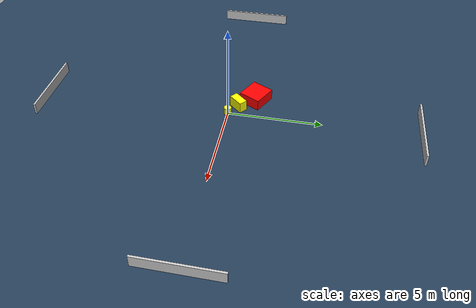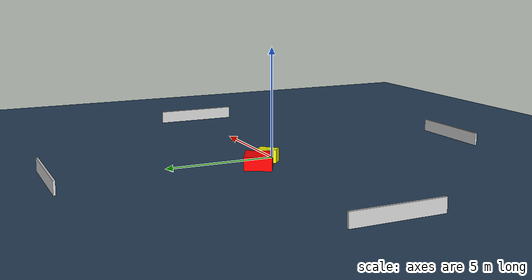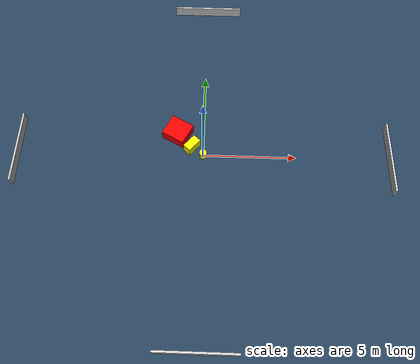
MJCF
<?xml version="1.0" ?>
<mujoco model="generated_environment">
  <option timestep="0.01" integrator="RK4" cone="elliptic"/>
  <default>
    <geom density="1"/>
  </default>
  <asset>
    <texture builtin="gradient" height="3072" name="skybox" rgb1="0.3 0.5 0.7" rgb2="0 0 0" type="skybox" width="512"/>
    <texture builtin="checker" height="300" name="groundplane" rgb1="0.2 0.3 0.4" rgb2="0.1 0.2 0.3" type="2d" width="300"/>
    <material name="groundplane" reflectance="0.2" texrepeat="5 5" texture="groundplane"/>
  </asset>
  <worldbody>
    <light dir="0 0 -1" directional="true" pos="0 0 1.5"/>
    <geom condim="3" friction="0.5 0.005 0.001" material="groundplane" name="floor" pos="0 0 0" size="0 0 0.05" type="plane"/>
    <body name="walls">
      <geom name="wall_1" condim="4" pos="-10.0 0.0 0.3" rgba="0.800000011920929 0.800000011920929 0.800000011920929 1.0" size="0.05 2.0 0.3" type="box"/>
      <geom name="wall_2" condim="4" pos="10.0 0.0 0.3" rgba="0.800000011920929 0.800000011920929 0.800000011920929 1.0" size="0.05 2.0 0.3" type="box"/>
      <geom name="wall_3" condim="4" pos="0.0 -10.0 0.3" rgba="0.800000011920929 0.800000011920929 0.800000011920929 1.0" size="2.0 0.05 0.3" type="box"/>
      <geom name="wall_4" condim="4" pos="0.0 10.0 0.3" rgba="0.800000011920929 0.800000011920929 0.800000011920929 1.0" size="2.0 0.05 0.3" type="box"/>
    </body>
    <body name="robot">
      <joint name="joint_x" type="slide" pos="0 0 0" axis="1 0 0"/>
      <joint name="joint_y" type="slide" pos="0 0 0" axis="0 1 0"/>
      <geom name="robot" type="cylinder" pos="0.0 0.0 0.2" size="0.2 0.2 0.0" mass="5.0" friction="1.0 0.005 0.0001" condim="4" rgba="1.0 1.0 0.0 1.0"/>
    </body>
    <body name="obstacle_1_movable">
      <geom name="obstacle_1_movable" condim="4" pos="-0.6156472879719596 0.4657295248431878 0.3" euler="0 0 228.36582937858924" friction="0.0 0.005 0.001" rgba="1.0 1.0 0.0 1.0" size="0.42444463174199043 0.2279633476421492 0.3" type="box" mass="0.1"/>
      <joint type="free"/>
    </body>
    <body name="obstacle_2_static">
      <geom name="obstacle_2_static" condim="4" pos="-1.415667080764353 1.2965032690963252 0.3" euler="0 0 242.21863389881213" friction="0.0 0.005 0.001" rgba="1.0 0.0 0.0 1.0" size="0.602104726081492 0.6468987147427165 0.3" type="box"/>
    </body>
  </worldbody>
  <actuator>
    <motor name="actuator_x" joint="joint_x" gear="1" ctrlrange="-1 1"/>
    <motor name="actuator_y" joint="joint_y" gear="1" ctrlrange="-1 1"/>
  </actuator>
</mujoco>
